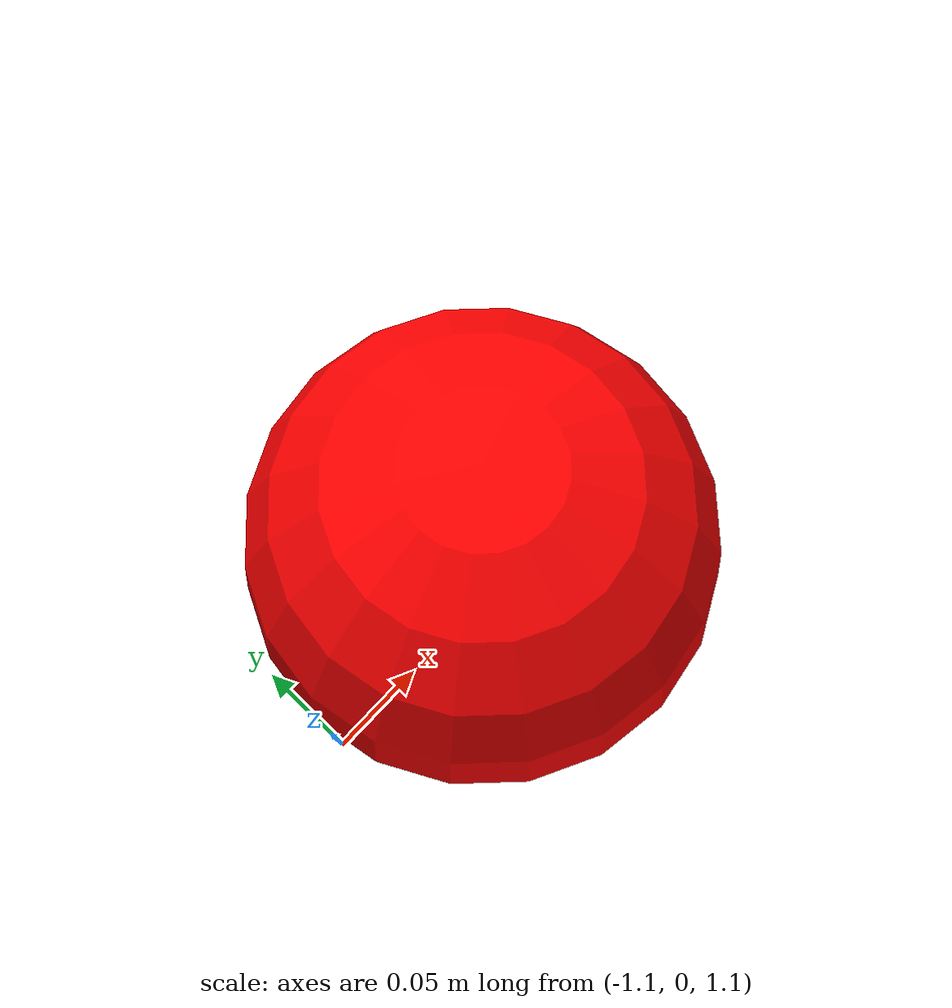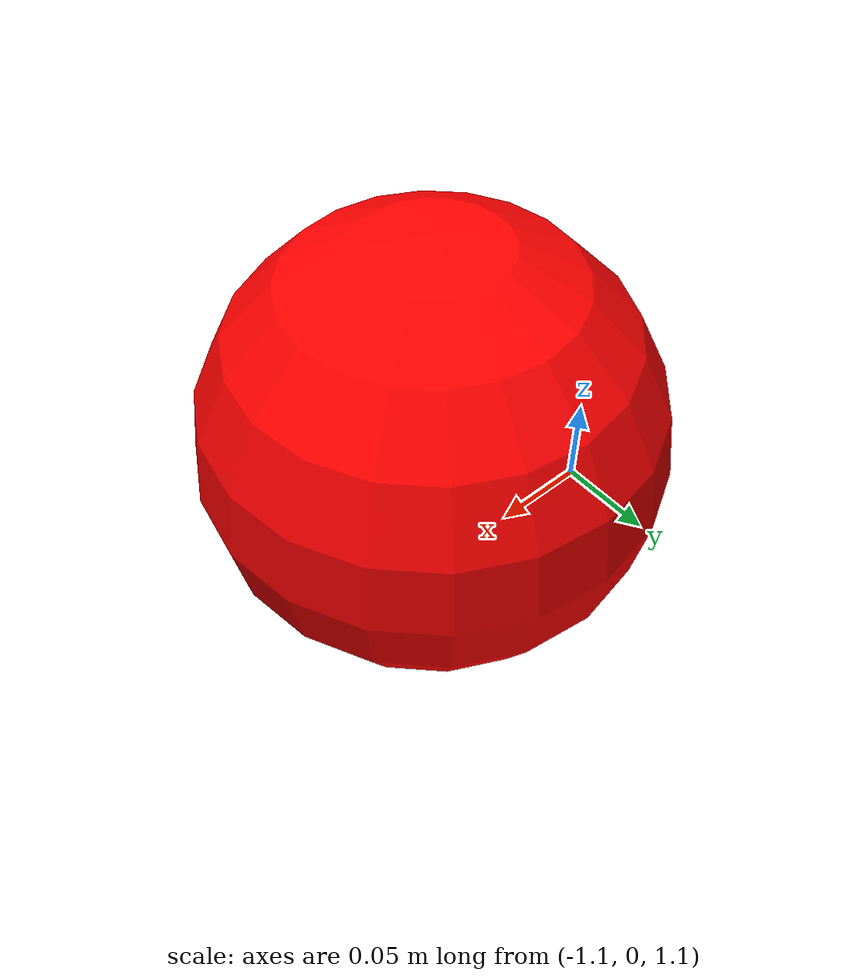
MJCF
<mujoco model="contact_ball">
    <!--
        v0.2 学习目标：
        1. 理解 geom 之间如何发生接触
        2. 理解 friction 对滑动/滚动的影响
        3. 理解 solref 对反弹/阻尼的影响
    -->

    <option timestep="0.002" gravity="0 0 -9.81"/>

    <worldbody>
        <light name="top_light" pos="0 0 4"/>

        <!-- 地面 -->
        <geom
            name="floor"
            type="plane"
            size="3 3 0.1"
            rgba="0.8 0.8 0.8 1"

            friction="0.8 0.05 0.01"
            solref="0.01 0.7"
            solimp="0.9 0.95 0.001 0.5 2"
        />

        <!-- 小球 -->
        <body name="ball" pos="-1 0 1.2">
            <freejoint name="ball_free"/>

            <geom
                name="ball_geom"
                type="sphere"
                size="0.1"
                mass="1"
                rgba="1 0 0 1"

                friction="0.8 0.05 0.01"
                solref="0.01 0.7"
                solimp="0.9 0.95 0.001 0.5 2"
            />
        </body>
    </worldbody>
</mujoco>
